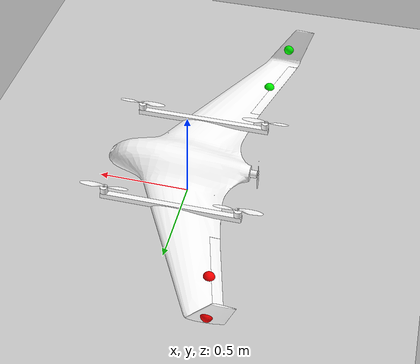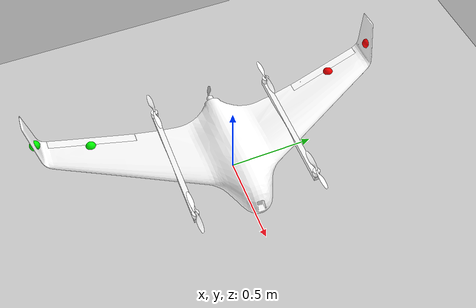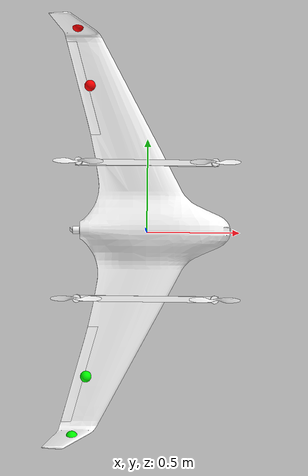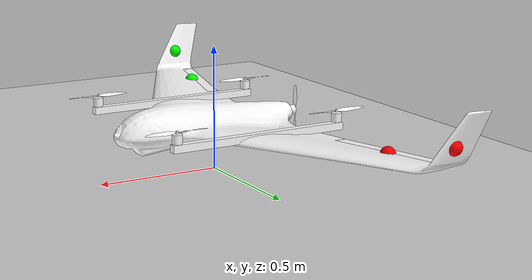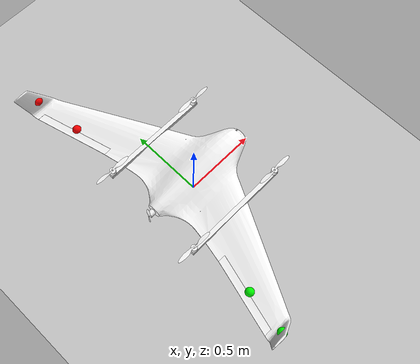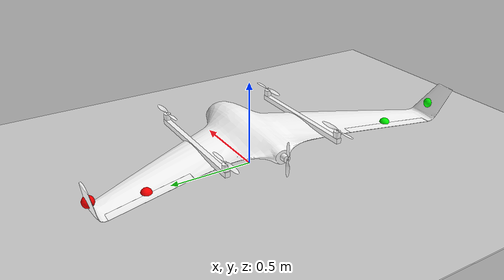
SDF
<?xml version="1.0" ?>
<sdf version="1.7">
  <world name="standard_vtol_arduplane_runway">
    <plugin filename="libignition-gazebo-physics-system.so"
      name="ignition::gazebo::systems::Physics">
    </plugin>
    <plugin filename="libignition-gazebo-user-commands-system.so"
      name="ignition::gazebo::systems::UserCommands">
    </plugin>
    <plugin filename="libignition-gazebo-scene-broadcaster-system.so"
      name="ignition::gazebo::systems::SceneBroadcaster">
    </plugin>
    <plugin filename="libignition-gazebo-imu-system.so"
      name="ignition::gazebo::systems::Imu">
    </plugin>

    <scene>
      <ambient>1.0 1.0 1.0</ambient>
      <background>0.8 0.8 0.8</background>
      <sky></sky>
    </scene>

    <light type="directional" name="sun">
      <cast_shadows>true</cast_shadows>
      <pose>0 0 10 0 0 0</pose>
      <diffuse>0.8 0.8 0.8 1</diffuse>
      <specular>0.8 0.8 0.8 1</specular>
      <attenuation>
        <range>1000</range>
        <constant>0.9</constant>
        <linear>0.01</linear>
        <quadratic>0.001</quadratic>
      </attenuation>
      <direction>-0.5 0.1 -0.9</direction>
    </light>

    <include>
      <uri>model://runway</uri>
    </include>

    <!-- SkyWalker X8 model -->
    <include>
      <pose>0 0 0.2 0 0 0</pose>
      <uri>model://skywalker_x8_quad</uri>
    </include>

  </world>
</sdf>
